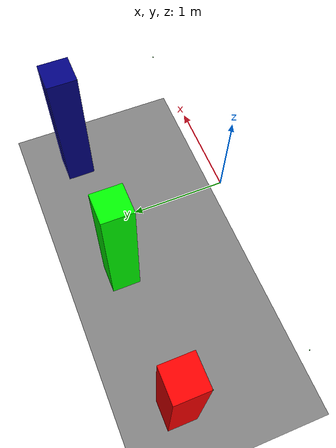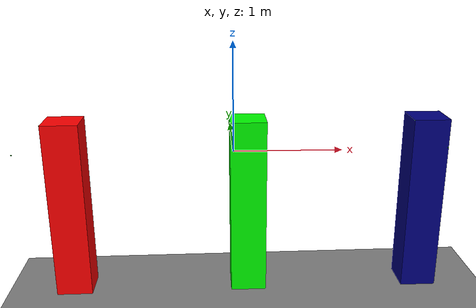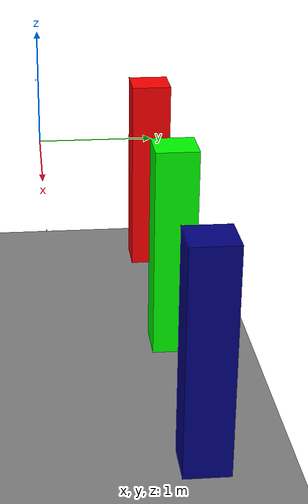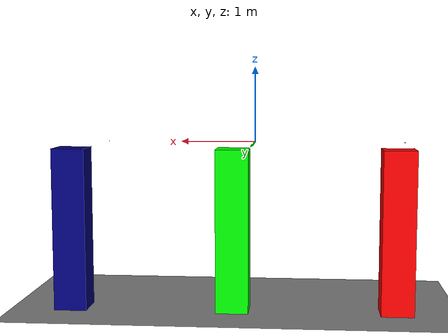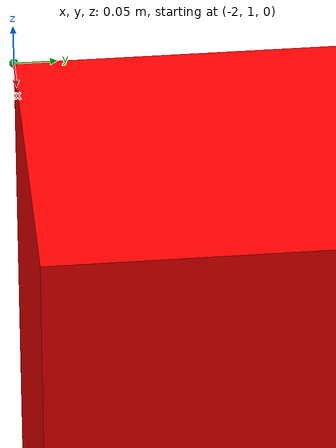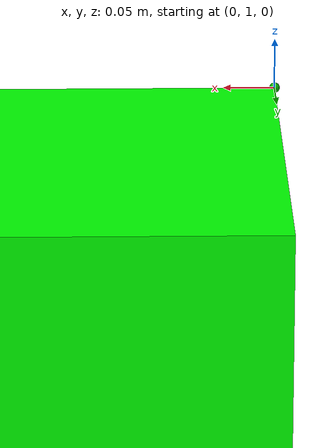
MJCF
<mujoco model="Connect and Weld defined with sites">
  <option viscosity="1">
    <flag contact="disable"/>
  </option>

  <visual>
    <scale framewidth="0.05" framelength="0.4"/>
  </visual>

  <default>
    <default class="free">
      <geom type="box" size=".2" fromto=".2 .2 0 .2 .2 -2" rgba=".4 .7 .6 1"/>
    </default>
    <site rgba=".0 .7 0 1"/>
  </default>

  <worldbody>
    <geom pos="0 0 -2" type="plane" size="10 10 .01"/>
    <light pos="0 0 20"/>

    <site name="a1" pos="-2 0 0" euler="-90 0 0"/>
    <body pos="-2 1 0">
      <freejoint/>
      <geom class="free" rgba="1 0 0 1"/>
      <site name="a2"/>
    </body>

    <site name="b1" euler="-90 0 0"/>
    <body pos="0 1 0">
      <freejoint/>
      <geom class="free" rgba="0 1 0 1"/>
      <site name="b2"/>
    </body>

    <site name="c1" pos="2 0 0" euler="-90 0 0"/>
    <body pos="2 1 0">
      <freejoint/>
      <geom class="free" rgba="0 0 0.5 1"/>
      <site name="c2"/>
    </body>
  </worldbody>

  <equality>
    <connect name="connect" site1="a1" site2="a2"/>
    <weld    name="weak weld" site1="b1" site2="b2" torquescale="0.2"/>
    <weld    name="weld" site1="c1" site2="c2"/>
  </equality>
</mujoco>
